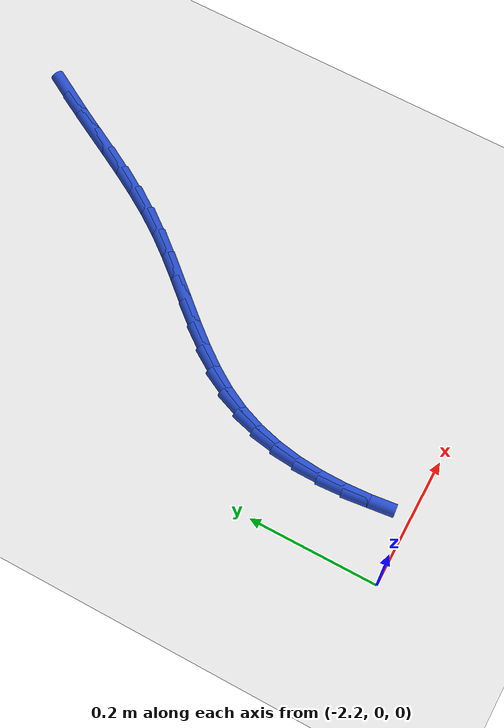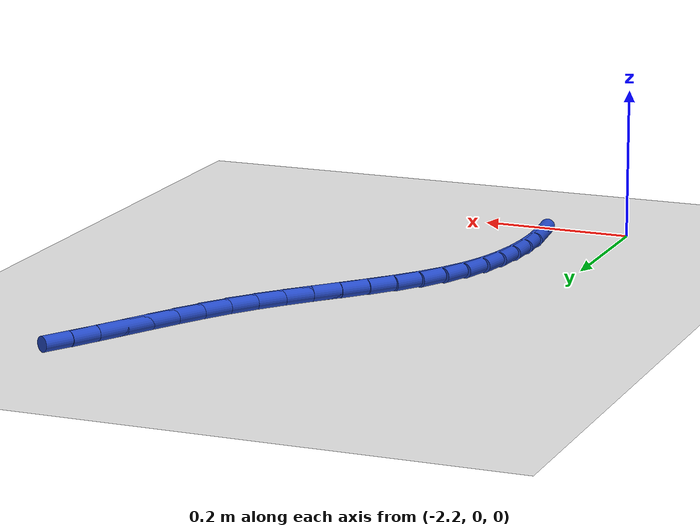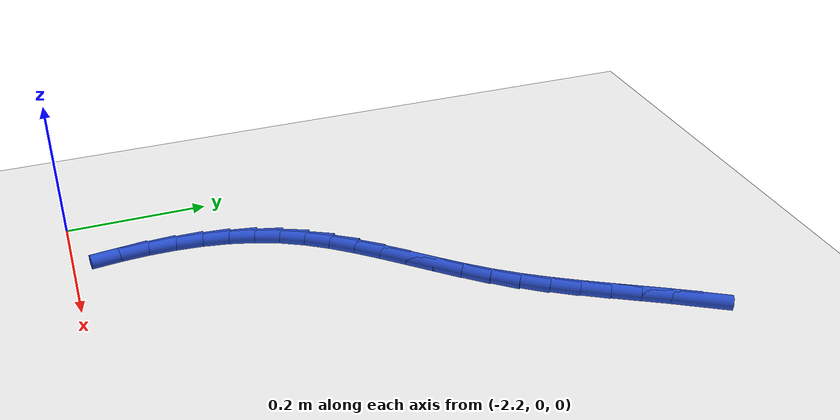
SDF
<sdf version="1.6">
 <world name="default">
  <model name="ground_plane">
   <static>1</static>
   <link name="link">
    <collision name="collision">
     <geometry><plane><normal>0 0 1</normal><size>100 100</size></plane></geometry>
     <surface><friction><ode><mu>100</mu><mu2>50</mu2></ode></friction></surface>
    </collision>
    <visual name="visual">
     <cast_shadows>0</cast_shadows>
     <geometry><plane><normal>0 0 1</normal><size>100 100</size></plane></geometry>
     <material>
      <script><uri>file://media/materials/scripts/gazebo.material</uri><name>Gazebo/WhiteGlow</name></script>
     </material>
    </visual>
   </link>
  </model>
  <model name="line">
   <link name="link_63">
    <pose>-1.7447412226518912 0.7592271460404268 0.01 0 1.57 1.0457428436793283</pose>
    <collision name="collision">
     <geometry><cylinder><radius>0.01</radius><length>0.08</length></cylinder></geometry>
    </collision>
    <visual name="visual">
     <material>
      <script><name>Gazebo/Blue</name><uri>file://media/materials/scripts/gazebo.material</uri></script>
     </material>
     <geometry><cylinder><radius>0.01</radius><length>0.08</length></cylinder></geometry>
    </visual>
   </link>
   <link name="link_64">
    <pose>-1.7639310732730613 0.7261007316923632 0.01 0 1.57 1.0680756240421299</pose>
    <collision name="collision">
     <geometry><cylinder><radius>0.01</radius><length>0.08</length></cylinder></geometry>
    </collision>
    <visual name="visual">
     <material>
      <script><name>Gazebo/Blue</name><uri>file://media/materials/scripts/gazebo.material</uri></script>
     </material>
     <geometry><cylinder><radius>0.01</radius><length>0.08</length></cylinder></geometry>
    </visual>
   </link>
   <link name="link_65">
    <pose>-1.7825423045825972 0.6922523098135481 0.01 0 1.57 1.0751641779594607</pose>
    <collision name="collision">
     <geometry><cylinder><radius>0.01</radius><length>0.08</length></cylinder></geometry>
    </collision>
    <visual name="visual">
     <material>
      <script><name>Gazebo/Blue</name><uri>file://media/materials/scripts/gazebo.material</uri></script>
     </material>
     <geometry><cylinder><radius>0.01</radius><length>0.08</length></cylinder></geometry>
    </visual>
   </link>
   <link name="link_66">
    <pose>-1.8010364609444085 0.658044701675975 0.01 0 1.57 1.0673598155734774</pose>
    <collision name="collision">
     <geometry><cylinder><radius>0.01</radius><length>0.08</length></cylinder></geometry>
    </collision>
    <visual name="visual">
     <material>
      <script><name>Gazebo/Blue</name><uri>file://media/materials/scripts/gazebo.material</uri></script>
     </material>
     <geometry><cylinder><radius>0.01</radius><length>0.08</length></cylinder></geometry>
    </visual>
   </link>
   <link name="link_67">
    <pose>-1.8198750867224043 0.6238407285516377 0.01 0 1.57 1.0447951288060568</pose>
    <collision name="collision">
     <geometry><cylinder><radius>0.01</radius><length>0.08</length></cylinder></geometry>
    </collision>
    <visual name="visual">
     <material>
      <script><name>Gazebo/Blue</name><uri>file://media/materials/scripts/gazebo.material</uri></script>
     </material>
     <geometry><cylinder><radius>0.01</radius><length>0.08</length></cylinder></geometry>
    </visual>
   </link>
   <link name="link_68">
    <pose>-1.839519726280494 0.5900032117125297 0.01 0 1.57 1.0074426961574314</pose>
    <collision name="collision">
     <geometry><cylinder><radius>0.01</radius><length>0.08</length></cylinder></geometry>
    </collision>
    <visual name="visual">
     <material>
      <script><name>Gazebo/Blue</name><uri>file://media/materials/scripts/gazebo.material</uri></script>
     </material>
     <geometry><cylinder><radius>0.01</radius><length>0.08</length></cylinder></geometry>
    </visual>
   </link>
   <link name="link_69">
    <pose>-1.860431923982586 0.5568949724306447 0.01 0 1.57 0.9552961262351105</pose>
    <collision name="collision">
     <geometry><cylinder><radius>0.01</radius><length>0.08</length></cylinder></geometry>
    </collision>
    <visual name="visual">
     <material>
      <script><name>Gazebo/Blue</name><uri>file://media/materials/scripts/gazebo.material</uri></script>
     </material>
     <geometry><cylinder><radius>0.01</radius><length>0.08</length></cylinder></geometry>
    </visual>
   </link>
   <link name="link_70">
    <pose>-1.883072185392148 0.5248781994744346 0.01 0 1.57 0.8981610780099987</pose>
    <collision name="collision">
     <geometry><cylinder><radius>0.01</radius><length>0.08</length></cylinder></geometry>
    </collision>
    <visual name="visual">
     <material>
      <script><name>Gazebo/Blue</name><uri>file://media/materials/scripts/gazebo.material</uri></script>
     </material>
     <geometry><cylinder><radius>0.01</radius><length>0.08</length></cylinder></geometry>
    </visual>
   </link>
   <link name="link_71">
    <pose>-1.9075752904595844 0.4941167541997968 0.01 0 1.57 0.8592301685371411</pose>
    <collision name="collision">
     <geometry><cylinder><radius>0.01</radius><length>0.08</length></cylinder></geometry>
    </collision>
    <visual name="visual">
     <material>
      <script><name>Gazebo/Blue</name><uri>file://media/materials/scripts/gazebo.material</uri></script>
     </material>
     <geometry><cylinder><radius>0.01</radius><length>0.08</length></cylinder></geometry>
    </visual>
   </link>
   <link name="link_72">
    <pose>-1.9332890040619934 0.4642953011881951 0.01 0 1.57 0.8414916160327705</pose>
    <collision name="collision">
     <geometry><cylinder><radius>0.01</radius><length>0.08</length></cylinder></geometry>
    </collision>
    <visual name="visual">
     <material>
      <script><name>Gazebo/Blue</name><uri>file://media/materials/scripts/gazebo.material</uri></script>
     </material>
     <geometry><cylinder><radius>0.01</radius><length>0.08</length></cylinder></geometry>
    </visual>
   </link>
   <link name="link_73">
    <pose>-1.959444587094193 0.4350275682189757 0.01 0 1.57 0.8448878969377035</pose>
    <collision name="collision">
     <geometry><cylinder><radius>0.01</radius><length>0.08</length></cylinder></geometry>
    </collision>
    <visual name="visual">
     <material>
      <script><name>Gazebo/Blue</name><uri>file://media/materials/scripts/gazebo.material</uri></script>
     </material>
     <geometry><cylinder><radius>0.01</radius><length>0.08</length></cylinder></geometry>
    </visual>
   </link>
   <link name="link_74">
    <pose>-1.9852733004509997 0.4059272830714846 0.01 0 1.57 0.8700394349712718</pose>
    <collision name="collision">
     <geometry><cylinder><radius>0.01</radius><length>0.08</length></cylinder></geometry>
    </collision>
    <visual name="visual">
     <material>
      <script><name>Gazebo/Blue</name><uri>file://media/materials/scripts/gazebo.material</uri></script>
     </material>
     <geometry><cylinder><radius>0.01</radius><length>0.08</length></cylinder></geometry>
    </visual>
   </link>
   <link name="link_75">
    <pose>-2.01000640502723 0.3766081735250689 0.01 0 1.57 0.918254676814643</pose>
    <collision name="collision">
     <geometry><cylinder><radius>0.01</radius><length>0.08</length></cylinder></geometry>
    </collision>
    <visual name="visual">
     <material>
      <script><name>Gazebo/Blue</name><uri>file://media/materials/scripts/gazebo.material</uri></script>
     </material>
     <geometry><cylinder><radius>0.01</radius><length>0.08</length></cylinder></geometry>
    </visual>
   </link>
   <link name="link_76">
    <pose>-2.0328751617177017 0.34668396735907475 0.01 0 1.57 0.9912318749209386</pose>
    <collision name="collision">
     <geometry><cylinder><radius>0.01</radius><length>0.08</length></cylinder></geometry>
    </collision>
    <visual name="visual">
     <material>
      <script><name>Gazebo/Blue</name><uri>file://media/materials/scripts/gazebo.material</uri></script>
     </material>
     <geometry><cylinder><radius>0.01</radius><length>0.08</length></cylinder></geometry>
    </visual>
   </link>
   <link name="link_77">
    <pose>-2.0531108314172326 0.31576839235284837 0.01 0 1.57 1.089987411629745</pose>
    <collision name="collision">
     <geometry><cylinder><radius>0.01</radius><length>0.08</length></cylinder></geometry>
    </collision>
    <visual name="visual">
     <material>
      <script><name>Gazebo/Blue</name><uri>file://media/materials/scripts/gazebo.material</uri></script>
     </material>
     <geometry><cylinder><radius>0.01</radius><length>0.08</length></cylinder></geometry>
    </visual>
   </link>
   <link name="link_78">
    <pose>-2.069953657429364 0.28348013959036855 0.01 0 1.57 1.201400040271018</pose>
    <collision name="collision">
     <geometry><cylinder><radius>0.01</radius><length>0.08</length></cylinder></geometry>
    </collision>
    <visual name="visual">
     <material>
      <script><name>Gazebo/Blue</name><uri>file://media/materials/scripts/gazebo.material</uri></script>
     </material>
     <geometry><cylinder><radius>0.01</radius><length>0.08</length></cylinder></geometry>
    </visual>
   </link>
   <link name="link_79">
    <pose>-2.083047420044782 0.24966087787332933 0.01 0 1.57 1.3059615899931232</pose>
    <collision name="collision">
     <geometry><cylinder><radius>0.01</radius><length>0.08</length></cylinder></geometry>
    </collision>
    <visual name="visual">
     <material>
      <script><name>Gazebo/Blue</name><uri>file://media/materials/scripts/gazebo.material</uri></script>
     </material>
     <geometry><cylinder><radius>0.01</radius><length>0.08</length></cylinder></geometry>
    </visual>
   </link>
   <link name="link_80">
    <pose>-2.0925939129375295 0.21446061093836538 0.01 0 1.57 1.4010065972550245</pose>
    <collision name="collision">
     <geometry><cylinder><radius>0.01</radius><length>0.08</length></cylinder></geometry>
    </collision>
    <visual name="visual">
     <material>
      <script><name>Gazebo/Blue</name><uri>file://media/materials/scripts/gazebo.material</uri></script>
     </material>
     <geometry><cylinder><radius>0.01</radius><length>0.08</length></cylinder></geometry>
    </visual>
   </link>
   <link name="link_81">
    <pose>-2.0988358284778683 0.17805194143678693 0.01 0 1.57 1.4860730505576516</pose>
    <collision name="collision">
     <geometry><cylinder><radius>0.01</radius><length>0.08</length></cylinder></geometry>
    </collision>
    <visual name="visual">
     <material>
      <script><name>Gazebo/Blue</name><uri>file://media/materials/scripts/gazebo.material</uri></script>
     </material>
     <geometry><cylinder><radius>0.01</radius><length>0.08</length></cylinder></geometry>
    </visual>
   </link>
   <link name="link_82">
    <pose>-2.1020158590360634 0.1406074720199039 0.01 0 1.57 1.5613771346020233</pose>
    <collision name="collision">
     <geometry><cylinder><radius>0.01</radius><length>0.08</length></cylinder></geometry>
    </collision>
    <visual name="visual">
     <material>
      <script><name>Gazebo/Blue</name><uri>file://media/materials/scripts/gazebo.material</uri></script>
     </material>
     <geometry><cylinder><radius>0.01</radius><length>0.08</length></cylinder></geometry>
    </visual>
   </link>
   <link name="link_83">
    <pose>-2.102376696982377 0.10229980533902731 0.01 0 1.57 -1.5140429519422178</pose>
    <collision name="collision">
     <geometry><cylinder><radius>0.01</radius><length>0.08</length></cylinder></geometry>
    </collision>
    <visual name="visual">
     <material>
      <script><name>Gazebo/Blue</name><uri>file://media/materials/scripts/gazebo.material</uri></script>
     </material>
     <geometry><cylinder><radius>0.01</radius><length>0.08</length></cylinder></geometry>
    </visual>
   </link>
   <link name="link_84">
    <pose>-2.100161034687074 0.06330154404546692 0.01 0 1.57 -1.4561718995938833</pose>
    <collision name="collision">
     <geometry><cylinder><radius>0.01</radius><length>0.08</length></cylinder></geometry>
    </collision>
    <visual name="visual">
     <material>
      <script><name>Gazebo/Blue</name><uri>file://media/materials/scripts/gazebo.material</uri></script>
     </material>
     <geometry><cylinder><radius>0.01</radius><length>0.08</length></cylinder></geometry>
    </visual>
   </link>
  </model>
 </world>
</sdf>
